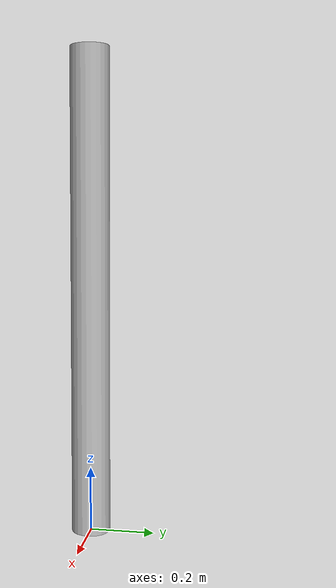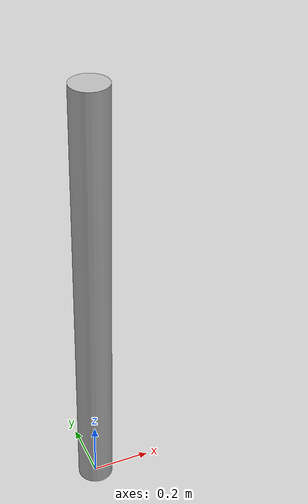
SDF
<?xml version="1.0" ?>
<sdf version="1.6">
  <model name="rwc2023/coatrack">
    <static>true</static>
    <link name="2_link">
      <collision name="2_col">
        <geometry>
            <cylinder>
                <radius>0.06</radius>
                <length>1.5</length>
            </cylinder>
        </geometry>
      </collision>
      <visual name="2_vis">
        <geometry>
            <cylinder>
                <radius>0.06</radius>
                <length>1.5</length>
            </cylinder>
        </geometry>
      </visual>
      <pose>0.0 0.0 0.75 0 0 0</pose>
    </link>
  </model>
</sdf>
